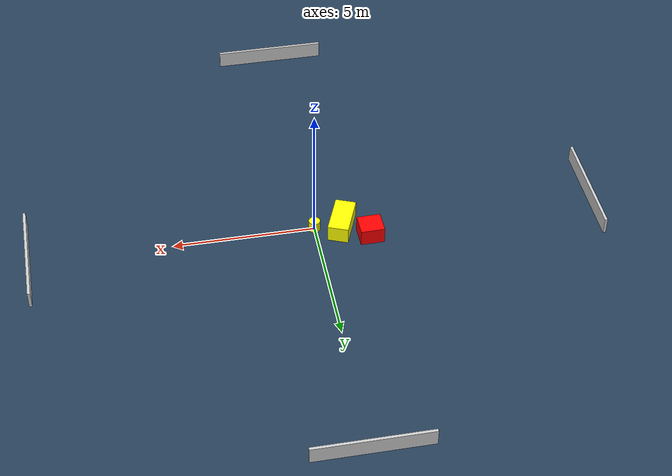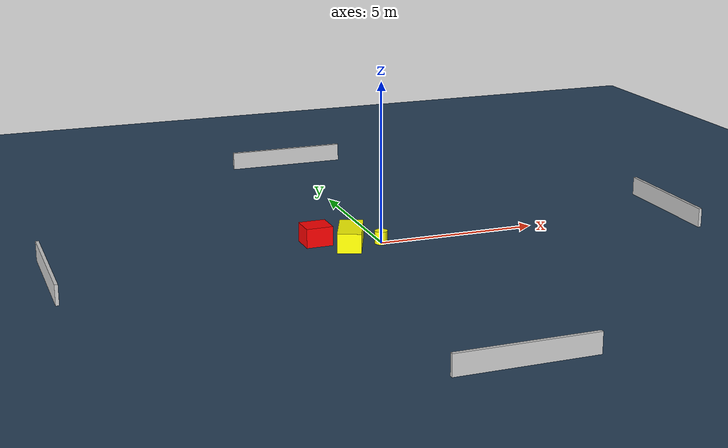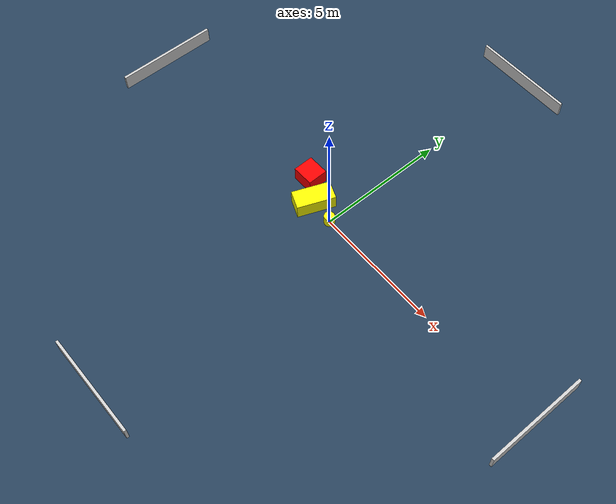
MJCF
<?xml version="1.0" ?>
<mujoco model="generated_environment">
  <option timestep="0.01" integrator="RK4" cone="elliptic"/>
  <default>
    <geom density="1"/>
  </default>
  <asset>
    <texture builtin="gradient" height="3072" name="skybox" rgb1="0.3 0.5 0.7" rgb2="0 0 0" type="skybox" width="512"/>
    <texture builtin="checker" height="300" name="groundplane" rgb1="0.2 0.3 0.4" rgb2="0.1 0.2 0.3" type="2d" width="300"/>
    <material name="groundplane" reflectance="0.2" texrepeat="5 5" texture="groundplane"/>
  </asset>
  <worldbody>
    <light dir="0 0 -1" directional="true" pos="0 0 1.5"/>
    <geom condim="3" friction="0.5 0.005 0.001" material="groundplane" name="floor" pos="0 0 0" size="0 0 0.05" type="plane"/>
    <body name="walls">
      <geom name="wall_1" condim="4" pos="-10.0 0.0 0.3" rgba="0.800000011920929 0.800000011920929 0.800000011920929 1.0" size="0.05 2.0 0.3" type="box"/>
      <geom name="wall_2" condim="4" pos="10.0 0.0 0.3" rgba="0.800000011920929 0.800000011920929 0.800000011920929 1.0" size="0.05 2.0 0.3" type="box"/>
      <geom name="wall_3" condim="4" pos="0.0 -10.0 0.3" rgba="0.800000011920929 0.800000011920929 0.800000011920929 1.0" size="2.0 0.05 0.3" type="box"/>
      <geom name="wall_4" condim="4" pos="0.0 10.0 0.3" rgba="0.800000011920929 0.800000011920929 0.800000011920929 1.0" size="2.0 0.05 0.3" type="box"/>
    </body>
    <body name="robot">
      <joint name="joint_x" type="slide" pos="0 0 0" axis="1 0 0"/>
      <joint name="joint_y" type="slide" pos="0 0 0" axis="0 1 0"/>
      <geom name="robot" type="cylinder" pos="0.0 0.0 0.2" size="0.2 0.2 0.0" mass="5.0" friction="1.0 0.005 0.0001" condim="4" rgba="1.0 1.0 0.0 1.0"/>
    </body>
    <body name="obstacle_1_movable">
      <geom name="obstacle_1_movable" condim="4" pos="-0.9665077365934126 0.07718379029427054 0.3" euler="0 0 158.05233640384859" friction="0.0 0.005 0.001" rgba="1.0 1.0 0.0 1.0" size="0.365665184002561 0.7338575993876355 0.3" type="box" mass="0.1"/>
      <joint type="free"/>
    </body>
    <body name="obstacle_2_static">
      <geom name="obstacle_2_static" condim="4" pos="-1.8696737525486662 0.6835152578272297 0.3" euler="0 0 271.0672880862751" friction="0.0 0.005 0.001" rgba="1.0 0.0 0.0 1.0" size="0.39213635358161714 0.4197774556715265 0.3" type="box"/>
    </body>
  </worldbody>
  <actuator>
    <motor name="actuator_x" joint="joint_x" gear="1" ctrlrange="-1 1"/>
    <motor name="actuator_y" joint="joint_y" gear="1" ctrlrange="-1 1"/>
  </actuator>
</mujoco>
